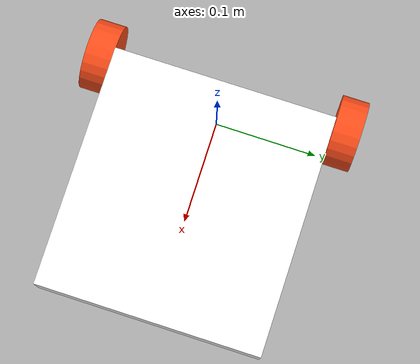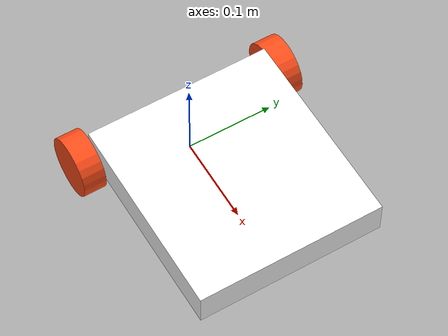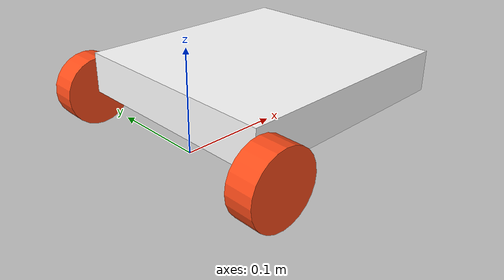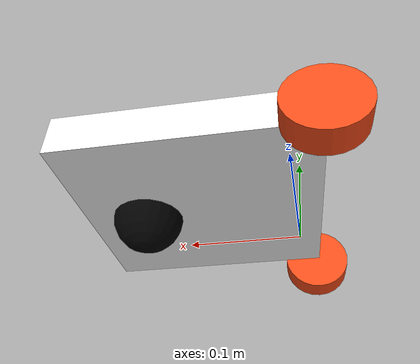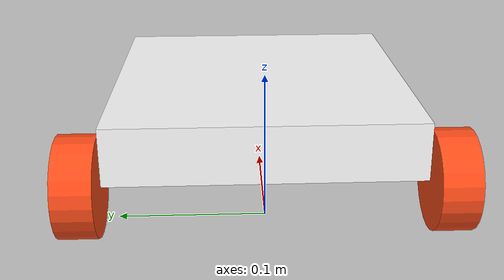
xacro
<?xml version="1.0"?>
<robot xmlns:xacro="http://www.ros.org/wiki/xacro">

    <xacro:include filename="inertial_macros.xacro"/>

    <material name="white">
        <color rgba="1 1 1 1" />
    </material>

    <material name="orange">
        <color rgba="1 0.3 0.1 1"/>
    </material>

    <material name="blue">
        <color rgba="0.2 0.2 1 1"/>
    </material>

    <material name="black">
        <color rgba="0 0 0 1"/>
    </material>

    <link name="base_link">

    </link>

    <joint name="chassis_joint" type="fixed">
        <parent link="base_link"/>
        <child link="chassis"/>
        <origin xyz="0 0 0.034"/>
    </joint>

    <link name="chassis">
        <visual>
            <origin xyz="0.09 0 0.02" rpy="0 0 0"/>
            <geometry>
                <box size="0.23 0.214 0.040"/>
            </geometry>
            <material name="white"/>
        </visual>
        <collision>
            <origin xyz="0.09 0 0.02" rpy="0 0 0"/>
            <geometry>
                <box size="0.23 0.214 0.040"/>
            </geometry>
        </collision>
        <xacro:inertial_box mass="0.5" x="0.23" y="0.214" z="0.04">
            <origin xyz="0.09 0 0.02" rpy="0 0 0"/>
        </xacro:inertial_box>
    </link>
    <!--WHEELS-->
    <!--Left-->
     <joint name="wheel_joint_l" type="continuous">
        <parent link="base_link"/>
        <child link="wheel_l"/>
        <origin xyz="-0.022 0.1205 0.034" rpy="-${pi/2} 0 0"/>
        <axis xyz="0 0 1"/>
    </joint>

    <link name="wheel_l">
        <visual>
            <geometry>
                <cylinder length="0.026" radius="0.034"/>
            </geometry>
            <material name="orange"/>
        </visual>
        <collision>
            <geometry>
                <cylinder length="0.026" radius="0.034"/>
            </geometry>
        </collision>
        <xacro:inertial_cylinder mass="0.05" length="0.026" radius="0.034">
            <origin xyz="0 0 0" rpy="0 0 0"/>
        </xacro:inertial_cylinder>
    </link>
    <!--Left-->
     <joint name="wheel_joint_r" type="continuous">
        <parent link="base_link"/>
        <child link="wheel_r"/>
        <origin xyz="-0.022 -0.1205 0.034" rpy="${pi/2} 0 0"/>
        <axis xyz="0 0 -1"/>
    </joint>

    <link name="wheel_r">
        <visual>
            <geometry>
                <cylinder length="0.026" radius="0.034"/>
            </geometry>
            <material name="orange"/>
        </visual>
        <collision>
            <geometry>
                <cylinder length="0.026" radius="0.034"/>
            </geometry>
        </collision>
        <xacro:inertial_cylinder mass="0.05" length="0.026" radius="0.034">
            <origin xyz="0 0 0" rpy="0 0 0"/>
        </xacro:inertial_cylinder>
    </link>
    <!-- BALL JOINT-->
    <joint name="ball_joint" type="fixed">
        <parent link="chassis"/>
        <child link="ball"/>
        <origin xyz="0.145 0 0"/>
    </joint>

    <link name="ball">
        <visual>
            <geometry>
                <sphere radius="0.034"/>
            </geometry>
            <material name="black"/>
        </visual>
        <collision>
            <geometry>
                <sphere radius="0.034"/>
            </geometry>
            <material name="black"/>
        </collision>
        <xacro:inertial_sphere mass="0.1" radius="0.034">
            <origin xyz="0 0 0" rpy="0 0 0"/>
        </xacro:inertial_sphere>
    </link>
    <gazebo reference="ball">
        <mu1 value="0.001"/>
        <mu2 value="0.001"/>
    </gazebo>

</robot>
